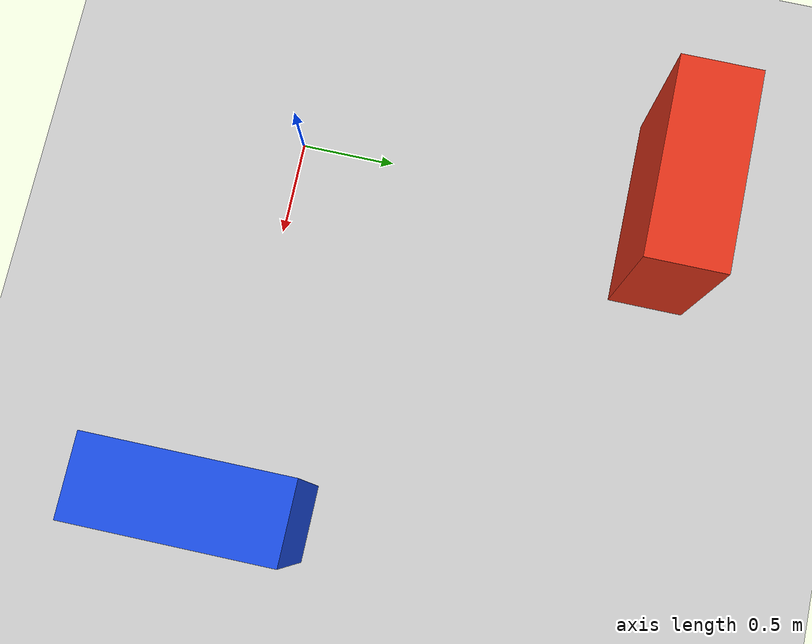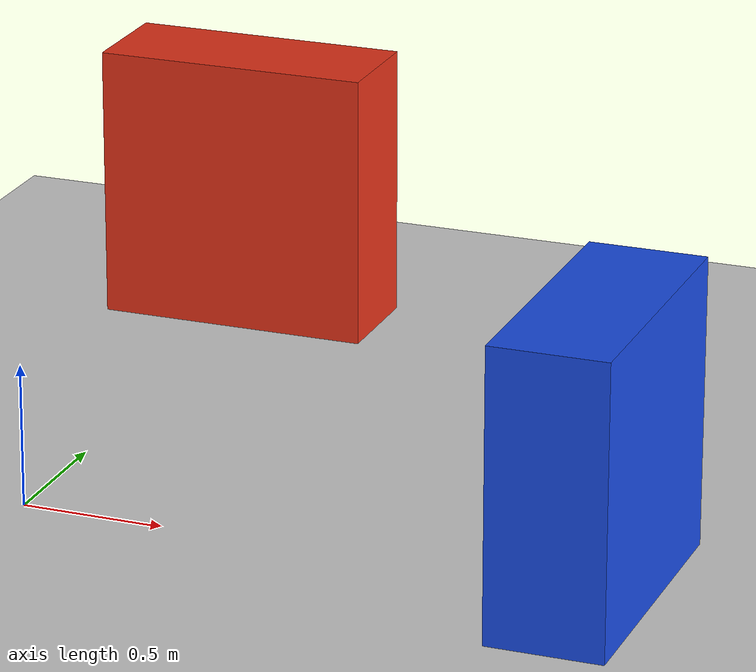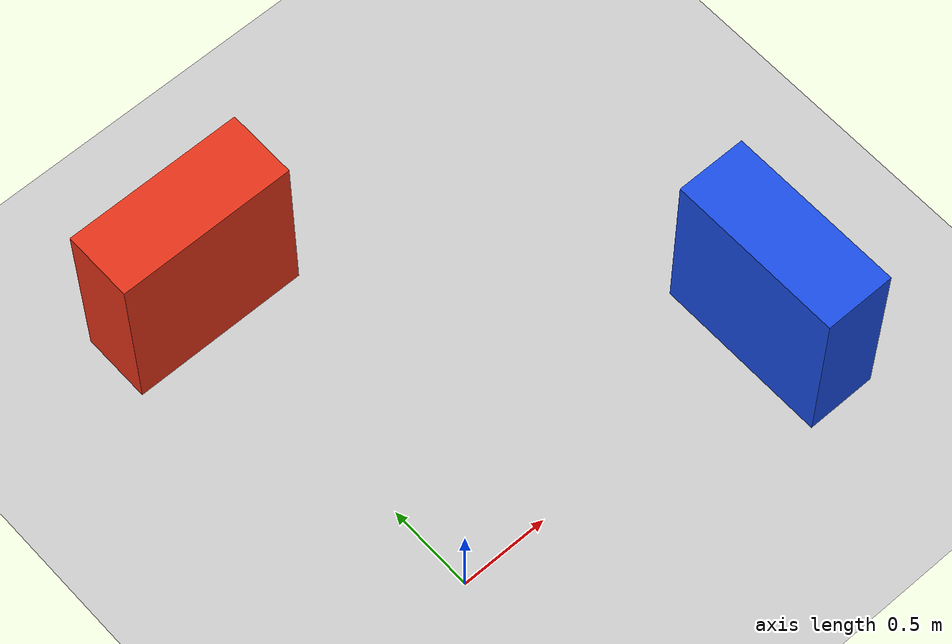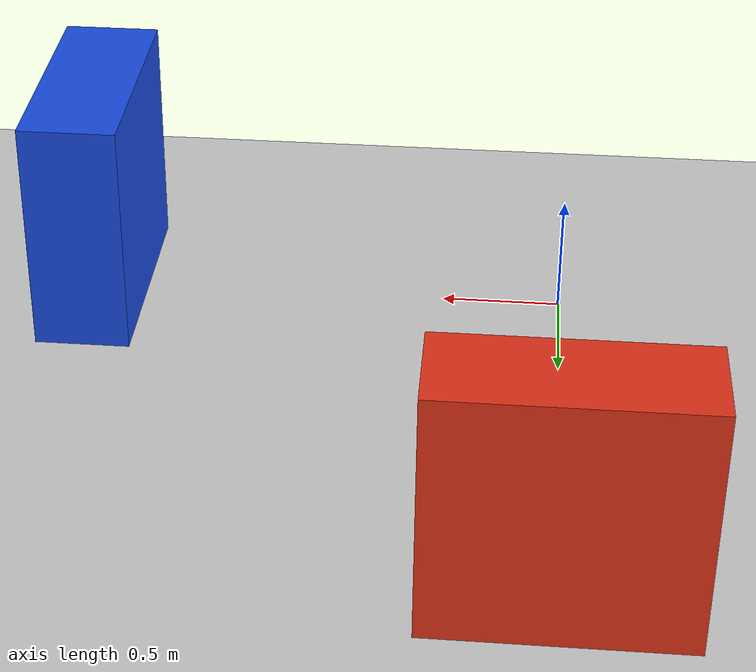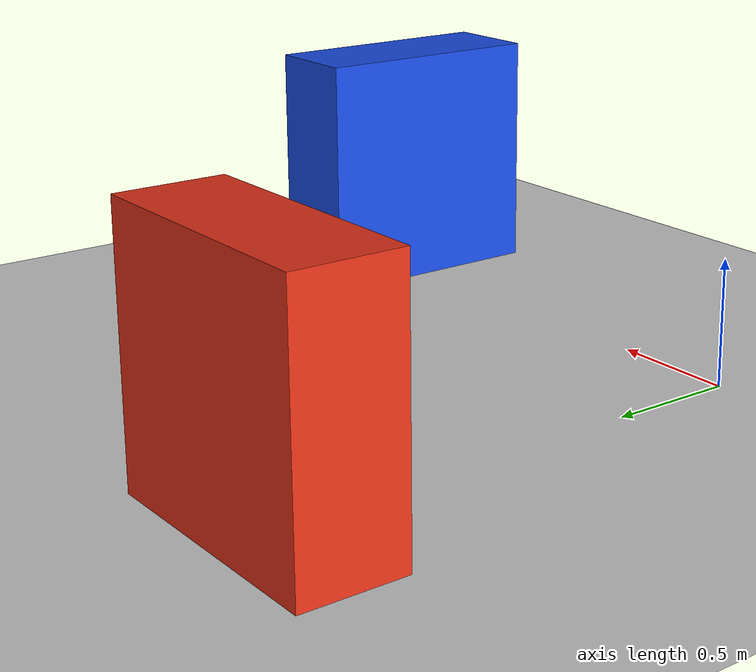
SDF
<?xml version="1.0" ?>
<sdf version="1.9">
  <world name="empty_diffbot_world">

    <plugin
      filename="gz-sim-physics-system"
      name="gz::sim::systems::Physics">
    </plugin>

    <plugin
      filename="gz-sim-user-commands-system"
      name="gz::sim::systems::UserCommands">
    </plugin>

    <plugin
      filename="gz-sim-scene-broadcaster-system"
      name="gz::sim::systems::SceneBroadcaster">
    </plugin>

    <plugin
      filename="gz-sim-sensors-system"
      name="gz::sim::systems::Sensors">
      <render_engine>ogre2</render_engine>
    </plugin>

    <plugin
      filename="gz-sim-imu-system"
      name="gz::sim::systems::Imu">
    </plugin>

    <light name="sun" type="directional">
      <cast_shadows>true</cast_shadows>
      <pose>0 0 10 0 0 0</pose>
      <diffuse>0.8 0.8 0.8 1</diffuse>
      <specular>0.2 0.2 0.2 1</specular>
      <attenuation>
        <range>1000</range>
        <constant>0.9</constant>
        <linear>0.01</linear>
        <quadratic>0.001</quadratic>
      </attenuation>
      <direction>-0.5 0.1 -0.9</direction>
    </light>

    <model name="ground_plane">
      <static>true</static>
      <link name="link">
        <collision name="collision">
          <geometry>
            <plane>
              <normal>0 0 1</normal>
              <size>20 20</size>
            </plane>
          </geometry>
        </collision>
        <visual name="visual">
          <geometry>
            <plane>
              <normal>0 0 1</normal>
              <size>20 20</size>
            </plane>
          </geometry>
          <material>
            <ambient>0.8 0.8 0.8 1</ambient>
            <diffuse>0.8 0.8 0.8 1</diffuse>
          </material>
        </visual>
      </link>
    </model>

    <model name="scan_box_front">
      <static>true</static>
      <pose>2.0 0 0.5 0 0 0</pose>
      <link name="box_link">
        <collision name="collision">
          <geometry>
            <box>
              <size>0.4 1.0 1.0</size>
            </box>
          </geometry>
        </collision>
        <visual name="visual">
          <geometry>
            <box>
              <size>0.4 1.0 1.0</size>
            </box>
          </geometry>
          <material>
            <ambient>0.1 0.3 0.9 1</ambient>
            <diffuse>0.1 0.3 0.9 1</diffuse>
          </material>
        </visual>
      </link>
    </model>

    <model name="scan_box_left">
      <static>true</static>
      <pose>0 2.0 0.5 0 0 0</pose>
      <link name="box_link">
        <collision name="collision">
          <geometry>
            <box>
              <size>1.0 0.4 1.0</size>
            </box>
          </geometry>
        </collision>
        <visual name="visual">
          <geometry>
            <box>
              <size>1.0 0.4 1.0</size>
            </box>
          </geometry>
          <material>
            <ambient>0.9 0.2 0.1 1</ambient>
            <diffuse>0.9 0.2 0.1 1</diffuse>
          </material>
        </visual>
      </link>
    </model>

  </world>
</sdf>
